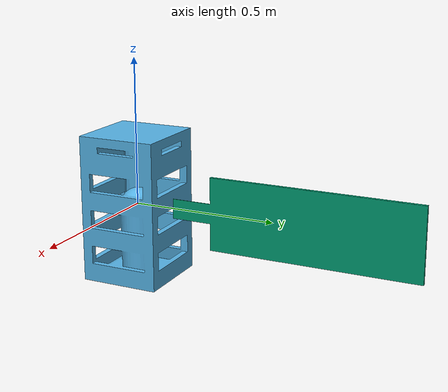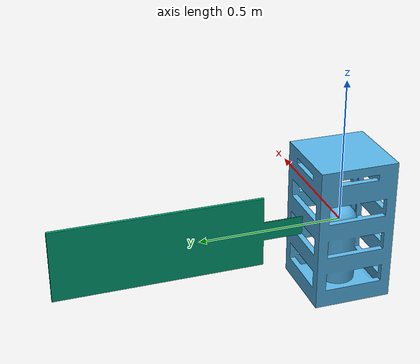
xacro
<?xml version="1.0"?>
<robot xmlns:xacro="http://wiki.ros.org/xacro" name="prime">
  <xacro:arg name="namespace" default="prime"/>
  <xacro:arg name="debug" default="false"/>
  <xacro:arg name="inertial_reference_frame" default="world"/>
  <xacro:arg name="controller_type" default="effort"/>
  <xacro:property name="controller" value="$(arg controller_type)"/>

  <xacro:include filename="$(find prime_description)/urdf/prime_base.xacro"/>
  <xacro:prime_base namespace="$(arg namespace)"/>

  <xacro:include filename="$(find sc_gazebo_plugins)/urdf/imu.xacro"/>
  <xacro:default_imu_macro
    namespace="$(arg namespace)"
    parent_link="$(arg namespace)/prime_link"
    inertial_reference_frame="$(arg inertial_reference_frame)">
    <origin xyz="0 0 0" rpy="0 0 0"/>
  </xacro:default_imu_macro>

  <xacro:include filename="$(find sc_gazebo_plugins)/urdf/pose_3d.xacro"/>
  <xacro:default_pose_3d
    namespace="$(arg namespace)"
    parent_link="$(arg namespace)/prime_link">
  </xacro:default_pose_3d>

</robot>

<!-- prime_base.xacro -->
<robot name="prime" xmlns:xacro="https://www.ros.org/wiki/xacro">

  <xacro:arg name="namespace" default="prime"/>
  <xacro:property name="PI" value="3.1415926535897931"/>
  <!--xacro:property name="m1" value="13.0"/-->
  <xacro:property name="m1" value="13"/>
  <xacro:property name="m2" value="0.5"/>
  <xacro:property name="l1" value="0.27"/>
  <xacro:property name="l2" value="1.0"/>
  <xacro:property name="l3" value="0.02"/>

  <xacro:macro name="prime_base" params="namespace">
    <!-- "Dummy base link to eliminate root link inertia warning -->
    <link name="$(arg namespace)/base_link"/>

    <!-- Start of main robot body -->
    <link name="$(arg namespace)/prime_link">
      <inertial>
        <origin xyz="0 0 0" rpy="0 0 0"/>
        <mass value="${m1}"/>
        <inertia
          ixx="${m1 / 12 * (l1 * l1 + l1 * l1)}" ixy="0.0" ixz="0.0"
          iyy="${m1 / 12 * (l1 * l1 + l1 * l1)}" iyz="0.0"
          izz="${m1 / 12 * (l1 * l1 + l1 * l1)}"/>
      </inertial>
      <visual>
        <origin xyz="0 0 0" rpy="0 0 0"/>
        <geometry>
          <mesh filename="file://$(find prime_description)/meshes/prime_fss.dae"/>
          <!--box size="${l1} ${l1} ${l1}"/-->
        </geometry>
      </visual>
      <collision>
        <origin xyz="0 0 0" rpy="0 0 0"/>
        <geometry>
          <!--mesh filename="file://$(find prime_description)/meshes/prime_fss.dae"/-->
          <box size="0.027 0.027 0.027"/>
        </geometry>
      </collision>
    </link>

    <!-- Connect dummy link to main link -->
    <joint name="$(arg namespace)/prime_base_joint" type="fixed">
      <origin xyz="0 0 0" rpy="0 0 0"/>
      <parent link="$(arg namespace)/base_link"/>
      <child link="$(arg namespace)/prime_link"/>
    </joint>

    <!-- Add experimental spring and bar -->
    <link name="$(arg namespace)/mass_bar">
      <inertial>
        <origin xyz="0 0.5 0.0" rpy="0 0 0"/>
        <mass value="${m2}"/>
        <inertia
          ixx="${(1/12) * m2 * (l2*l2 + l3*l3)}" ixy="0.0" ixz="0.0"
          iyy="${(1/6) * m2 * l3 * l3}" iyz="0.0"
          izz="${(1/12) * m2 * (l2*l2 + l3*l3)}"/>
      </inertial>
      <visual>
        <origin xyz="0 0.5 0.0" rpy="${-PI/2} 0 0"/>
        <geometry>
          <mesh filename="file://$(find sc_models)/models/grab_solar_panel/meshes/grasp_panel.dae" scale="1 1 0.715"/>
          <!--box size="0.02 1.0 0.02"/-->
        </geometry>
      </visual>
      <collision>
        <origin xyz="0 0.5 0" rpy="0 0 0"/>
        <geometry>
          <box size="0.002 0.002 0.002"/>
        </geometry>
      </collision>
    </link>

    <joint name="$(arg namespace)/torsion_spring_joint" type="revolute">
      <origin xyz="0.0 0.135 0.0" rpy="0 0 0"/>
      <parent link="$(arg namespace)/prime_link"/>
      <child link="$(arg namespace)/mass_bar"/>
      <axis xyz="0 0 1"/>
      <limit effort="100000" lower="-1.57" upper="1.57" velocity="2000" />
    </joint>

    <gazebo>
      <plugin name="${namespace}_torsion_spring_joint" filename="libsc_torsional_spring_joint_plugin.so">
        <torsion_joint>${namespace}/torsion_spring_joint</torsion_joint>
        <kx>0.11</kx>
        <set_point>0.0</set_point>
      </plugin>
    </gazebo>

    <gazebo>
      <plugin name="${namespace}_initial_velocity" filename="libsc_set_initial_velocity_plugin.so">
      </plugin>
    </gazebo>

    <!-- Add air bearings -->

    <gazebo>
      <plugin name="gazebo_ros_control" filename="libgazebo_ros_control.so">
      </plugin>
    </gazebo>

    <xacro:arg name="inertial_reference_frame" default="world"/>

  </xacro:macro>
</robot>

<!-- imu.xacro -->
<robot xmlns:xacro="http://www.ros.org/wiki/xacro">
  <!-- Macro for a minimal collision block (for when you do not want collision block but gazebo needs one) -->
  <xacro:macro name="no_collision">
    <collision>
      <geometry>
        <cylinder length="${0.000001}" radius="${0.000001}" />
      </geometry>
      <origin xyz="0 0 0" rpy="0 ${0.5*pi} 0"/>
    </collision>
  </xacro:macro>

  <xacro:macro name="default_imu" params="namespace parent_link *origin">
    <!-- ADIS16448 IMU. -->
    <xacro:imu_plugin_macro
      namespace="${namespace}"
      imu_suffix=""
      parent_link="${parent_link}"
      imu_topic="imu"
      mass_imu_sensor="0.015"
      gyroscope_noise_density="0.0003394"
      gyroscope_random_walk="0.000038785"
      gyroscope_bias_correlation_time="1000.0"
      gyroscope_turn_on_bias_sigma="0.0087"
      accelerometer_noise_density="0.004"
      accelerometer_random_walk="0.006"
      accelerometer_bias_correlation_time="300.0"
      accelerometer_turn_on_bias_sigma="0.1960"
      orientation_noise="0.01"
      enable_local_ned_frame="false"
      reference_frame="world"
      update_rate="50">
      <inertia ixx="0.00001" ixy="0.0" ixz="0.0" iyy="0.00001" iyz="0.0" izz="0.00001" />
      <xacro:insert_block name="origin" />
    </xacro:imu_plugin_macro>
  </xacro:macro>

  <xacro:macro name="default_imu_macro" params="namespace parent_link *origin inertial_reference_frame">
    <!-- ADIS16448 IMU. -->
    <xacro:if value="${inertial_reference_frame == 'world'}">
      <xacro:default_imu_enu
        namespace="${namespace}"
        parent_link="${parent_link}">
        <xacro:insert_block name="origin" />
      </xacro:default_imu_enu>
    </xacro:if>

    <xacro:if value="${inertial_reference_frame == 'world_ned'}">
      <xacro:default_imu_ned
        namespace="${namespace}"
        parent_link="${parent_link}">
        <xacro:insert_block name="origin" />
      </xacro:default_imu_ned>
    </xacro:if>
  </xacro:macro>

  <xacro:macro name="default_imu_enu" params="namespace parent_link *origin">
    <!-- ADIS16448 IMU. -->
    <xacro:imu_plugin_macro
      namespace="${namespace}"
      imu_suffix=""
      parent_link="${parent_link}"
      imu_topic="imu"
      mass_imu_sensor="0.015"
      gyroscope_noise_density="0.0003394"
      gyroscope_random_walk="0.000038785"
      gyroscope_bias_correlation_time="1000.0"
      gyroscope_turn_on_bias_sigma="0.0087"
      accelerometer_noise_density="0.004"
      accelerometer_random_walk="0.006"
      accelerometer_bias_correlation_time="300.0"
      accelerometer_turn_on_bias_sigma="0.1960"
      orientation_noise="0.01"
      enable_local_ned_frame="false"
      reference_frame="world"
      update_rate="50">
      <inertia ixx="0.00001" ixy="0.0" ixz="0.0" iyy="0.00001" iyz="0.0" izz="0.00001" />
      <xacro:insert_block name="origin" />>
    </xacro:imu_plugin_macro>
  </xacro:macro>

  <xacro:macro name="default_imu_ned" params="namespace parent_link *origin">
    <!-- ADIS16448 IMU. -->
    <xacro:imu_plugin_macro
      namespace="${namespace}"
      imu_suffix=""
      parent_link="${parent_link}"
      imu_topic="imu"
      mass_imu_sensor="0.015"
      gyroscope_noise_density="0.0003394"
      gyroscope_random_walk="0.000038785"
      gyroscope_bias_correlation_time="1000.0"
      gyroscope_turn_on_bias_sigma="0.0087"
      accelerometer_noise_density="0.004"
      accelerometer_random_walk="0.006"
      accelerometer_bias_correlation_time="300.0"
      accelerometer_turn_on_bias_sigma="0.1960"
      orientation_noise="0.01"
      enable_local_ned_frame="true"
      reference_frame="world_ned"
      update_rate="50">
      <inertia ixx="0.00001" ixy="0.0" ixz="0.0" iyy="0.00001" iyz="0.0" izz="0.00001" />
      <xacro:insert_block name="origin" />
    </xacro:imu_plugin_macro>
  </xacro:macro>

  <!-- Macro to add an IMU. -->
  <xacro:macro name="imu_plugin_macro"
    params="namespace imu_suffix parent_link imu_topic
      mass_imu_sensor gyroscope_noise_density gyroscope_random_walk
      gyroscope_bias_correlation_time gyroscope_turn_on_bias_sigma
      accelerometer_noise_density accelerometer_random_walk
      accelerometer_bias_correlation_time accelerometer_turn_on_bias_sigma
      orientation_noise
      update_rate reference_frame
      enable_local_ned_frame
      *inertia *origin">
    <!-- IMU link -->
    <link name="${namespace}/imu${imu_suffix}_link">
      <inertial>
        <xacro:insert_block name="inertia" />
        <mass value="${mass_imu_sensor}" />  <!-- [kg] -->
        <origin xyz="0 0 0" rpy="0 0 0" />
      </inertial>
    </link>

    <!-- IMU joint -->
    <joint name="${namespace}/imu${imu_suffix}_joint" type="revolute">
      <xacro:insert_block name="origin" />
      <parent link="${parent_link}" />
      <child link="${namespace}/imu${imu_suffix}_link" />
      <limit upper="0" lower="0" effort="0" velocity="0" />
      <axis xyz="1 0 0"/>
    </joint>

    <gazebo>
      <plugin filename="libsc_imu_gazebo_plugin.so" name="libsc_imu${imu_suffix}_gazebo_plugin">
      <!-- A good description of the IMU parameters can be found in the kalibr documentation:
           https://github.com/ethz-asl/kalibr/wiki/IMU-Noise-Model-and-Intrinsics -->
        <robot_namespace>${namespace}</robot_namespace> <!-- (string, required): ros namespace in which the messages are published -->
        <link_name>${namespace}/imu${imu_suffix}_link</link_name> <!-- (string, required): name of the body which holds the IMU sensor -->
        <sensor_topic>${imu_topic}</sensor_topic> <!-- (string): name of the sensor output topic and prefix of service names (defaults to imu) -->

        <gyroscope_noise_density>${gyroscope_noise_density}</gyroscope_noise_density> <!-- Gyroscope noise density (two-sided spectrum) [rad/s/sqrt(Hz)] -->
        <gyroscope_random_walk>${gyroscope_random_walk}</gyroscope_random_walk> <!-- Gyroscope bias random walk [rad/s/s/sqrt(Hz)] -->
        <gyroscope_bias_correlation_time>${gyroscope_bias_correlation_time}</gyroscope_bias_correlation_time> <!-- Gyroscope bias correlation time constant [s] -->
        <gyroscope_turn_on_bias_sigma>${gyroscope_turn_on_bias_sigma}</gyroscope_turn_on_bias_sigma> <!-- Gyroscope turn on bias standard deviation [rad/s] -->

        <accelerometer_noise_density>${accelerometer_noise_density}</accelerometer_noise_density> <!-- Accelerometer noise density (two-sided spectrum) [m/s^2/sqrt(Hz)] -->
        <accelerometer_random_walk>${accelerometer_random_walk}</accelerometer_random_walk> <!-- Accelerometer bias random walk. [m/s^2/s/sqrt(Hz)] -->
        <accelerometer_bias_correlation_time>${accelerometer_bias_correlation_time}</accelerometer_bias_correlation_time> <!-- Accelerometer bias correlation time constant [s] -->
        <accelerometer_turn_on_bias_sigma>${accelerometer_turn_on_bias_sigma}</accelerometer_turn_on_bias_sigma> <!-- Accelerometer turn on bias standard deviation [m/s^2] -->
        <orientation_noise>${orientation_noise}</orientation_noise>

        <update_rate>${update_rate}</update_rate> <!-- Update period of accelerometer and gyroscope [s] -->
        <enable_gazebo_messages>false</enable_gazebo_messages>
        <enable_local_ned_frame>${enable_local_ned_frame}</enable_local_ned_frame>
        <static_reference_frame>${reference_frame}</static_reference_frame>
      </plugin>
    </gazebo>
  </xacro:macro>

</robot>

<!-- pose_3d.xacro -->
<robot xmlns:xacro="http://www.ros.org/wiki/xacro">
  <xacro:macro name="pose_3d_macro" params="namespace suffix parent_link topic update_rate *origin noise_sigma reference_frame publish_ned_odom noise_amplitude">
    <!--Mount a 3D pose sensor-->
    <link name="${namespace}/pose_sensor_link_${suffix}">
      <inertial>
        <inertia ixx="0.000001" ixy="0.0" ixz="0.0" iyy="0.000001" iyz="0.0" izz="0.000001"/>
        <mass value="0.00001"/>
        <origin xyz="0 0 0" rpy="0 0 0"/>
      </inertial>
    </link>

    <joint name="${namespace}/pose_sensor_${suffix}_joint" type="revolute">
      <xacro:insert_block name="origin"/>
      <axis xyz="0 0 1"/>
      <parent link="${parent_link}"/>
      <child link="${namespace}/pose_sensor_link_${suffix}"/>
      <limit effort="0" lower="0" upper="0" velocity="0"/>
    </joint>

    <gazebo>
      <plugin name="pose_3d_plugin" filename="libsc_pose_gt_plugin.so">
        <robot_namespace>${namespace}</robot_namespace>
        <link_name>${namespace}/base_link</link_name>
        <sensor_topic>${topic}</sensor_topic>
        <static_reference_frame>${reference_frame}</static_reference_frame>
        <noise_sigma>${noise_sigma}</noise_sigma>
        <noise_amplitude>${noise_amplitude}</noise_amplitude>
        <update_rate>${update_rate}</update_rate>
        <enable_gazebo_messages>false</enable_gazebo_messages>
        <publish_ned_odom>${publish_ned_odom}</publish_ned_odom>
      </plugin>
    </gazebo>
  </xacro:macro>

  <xacro:macro name="default_pose_3d" params="namespace parent_link">
    <xacro:pose_3d_macro
      namespace="${namespace}"
      parent_link="${parent_link}"
      topic="pose_gt"
      update_rate="20"
      noise_sigma="0.0"
      noise_amplitude="0.0"
      suffix="default"
      reference_frame="world"
      publish_ned_odom="false">
      <origin xyz="0 0 0" rpy="0 0 0"/>
    </xacro:pose_3d_macro>
  </xacro:macro>

</robot>
